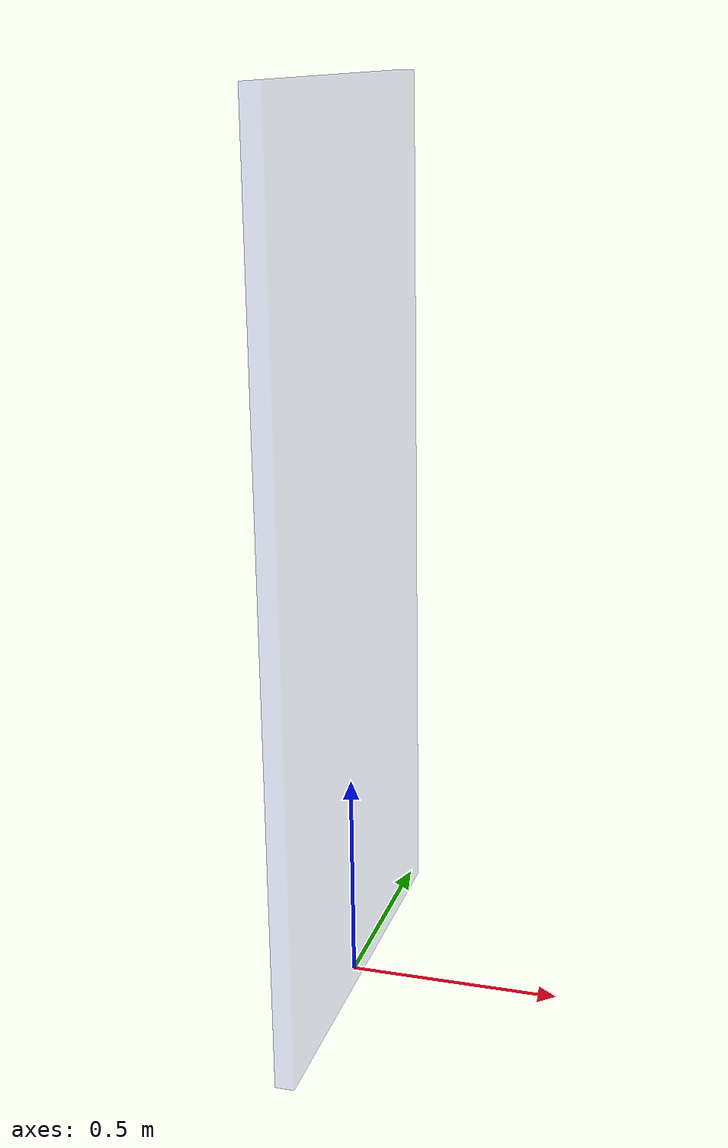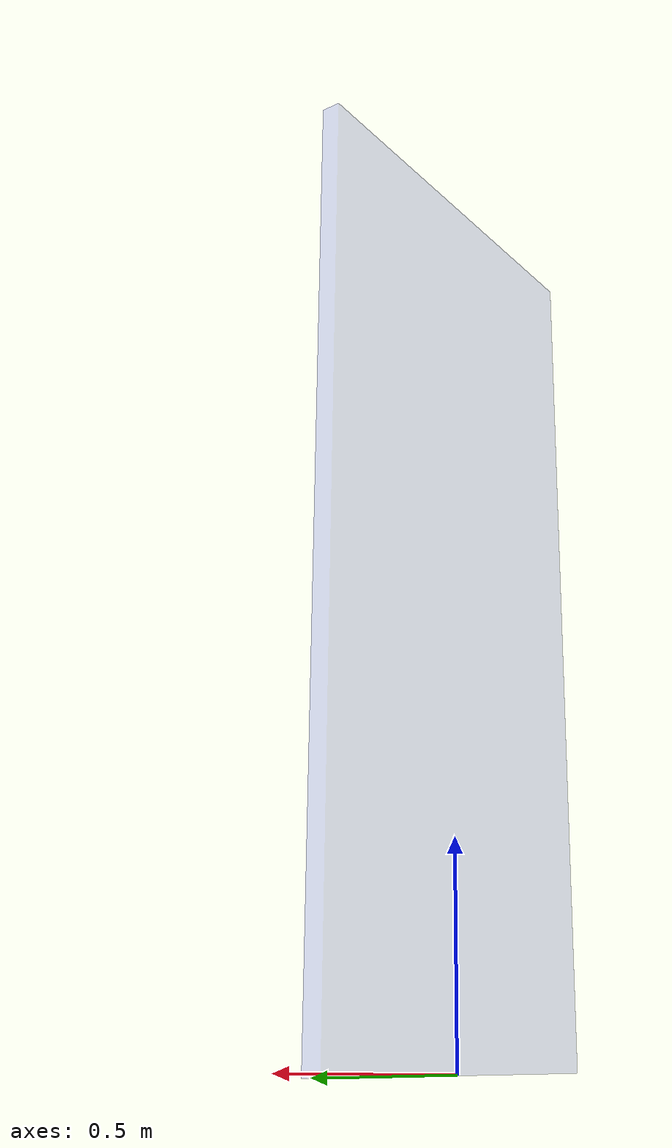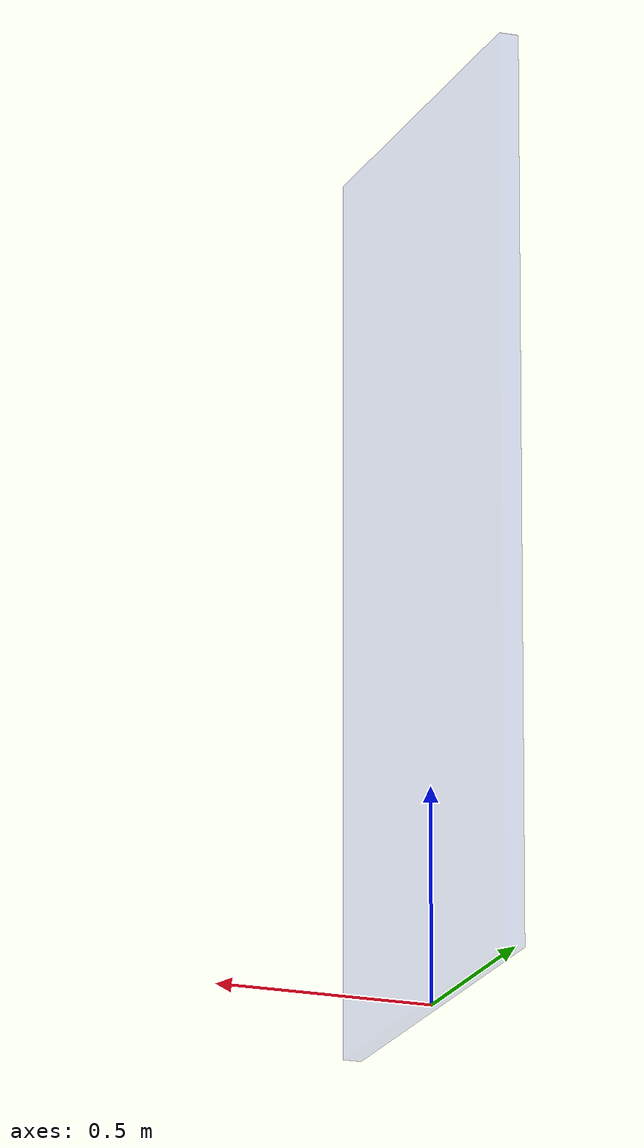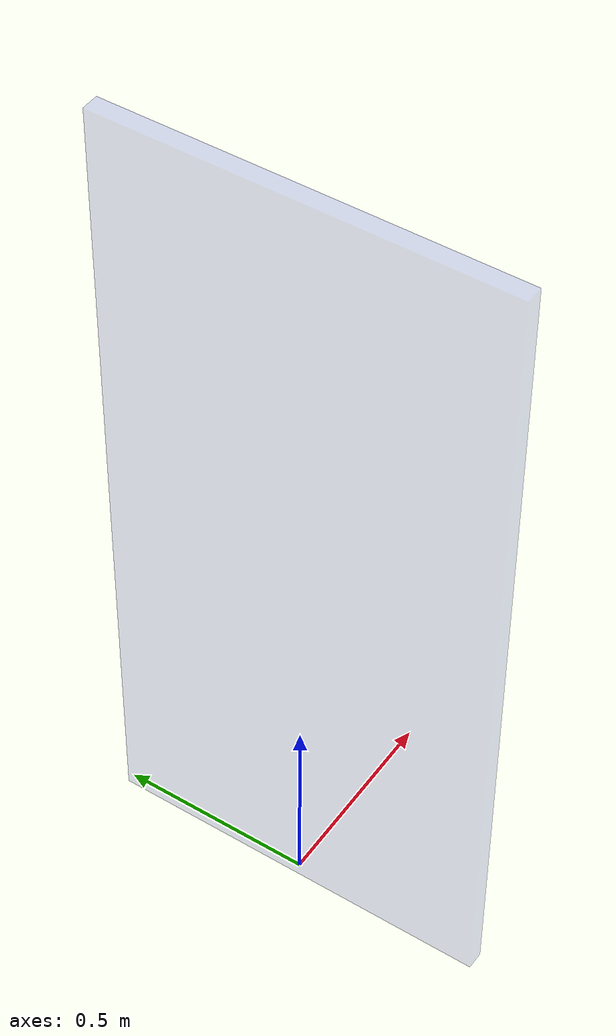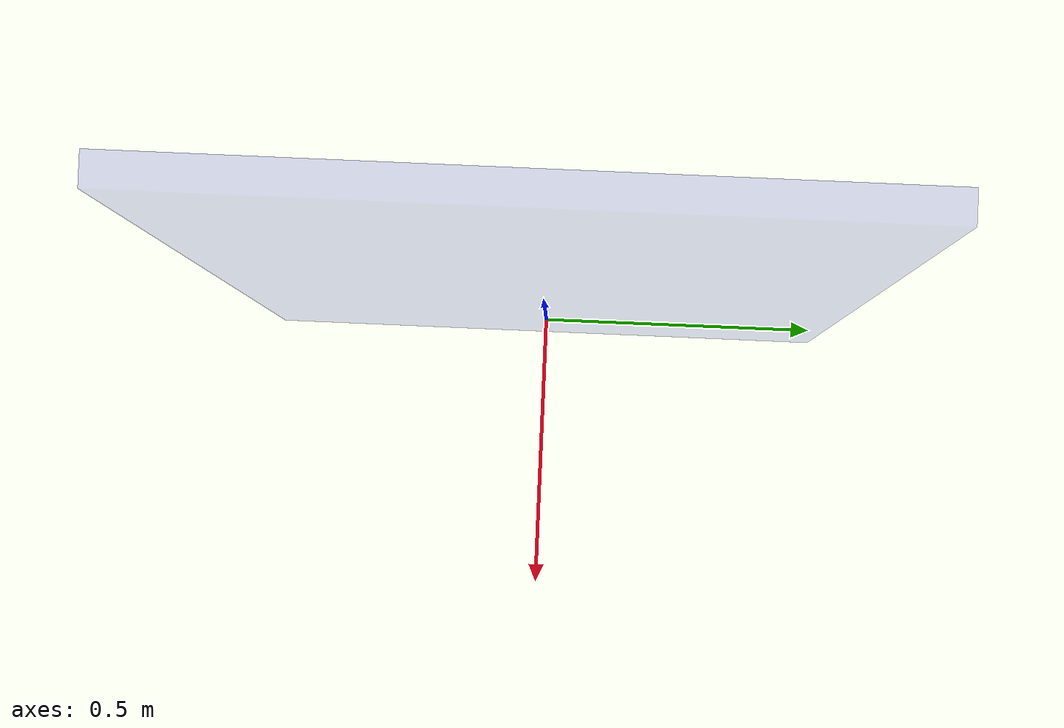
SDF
<?xml version="1.0" ?>
<sdf version="1.5">
  <model name="glass_wall_segment">
    <static>true</static>
    <link name="wall">
      <pose>-0.0 0.0 1.05 0 0 1.5709</pose>
      <collision name="collision">
        <geometry>
          <box>
            <size>1.0 0.04445 2.1</size>
          </box>
        </geometry>
      </collision>
      <visual name="visual">
        <material>
          <ambient>0.15 0.2 0.78 0.2</ambient>
          <diffuse>0.15 0.2 0.78 0.2</diffuse>
          <specular>0.15 0.2 0.78 0.2</specular>
        </material>
        <geometry>
          <box>
            <size>1.0 0.04445 2.1</size>
          </box>
        </geometry>
      </visual>
    </link>
  </model>
</sdf>
